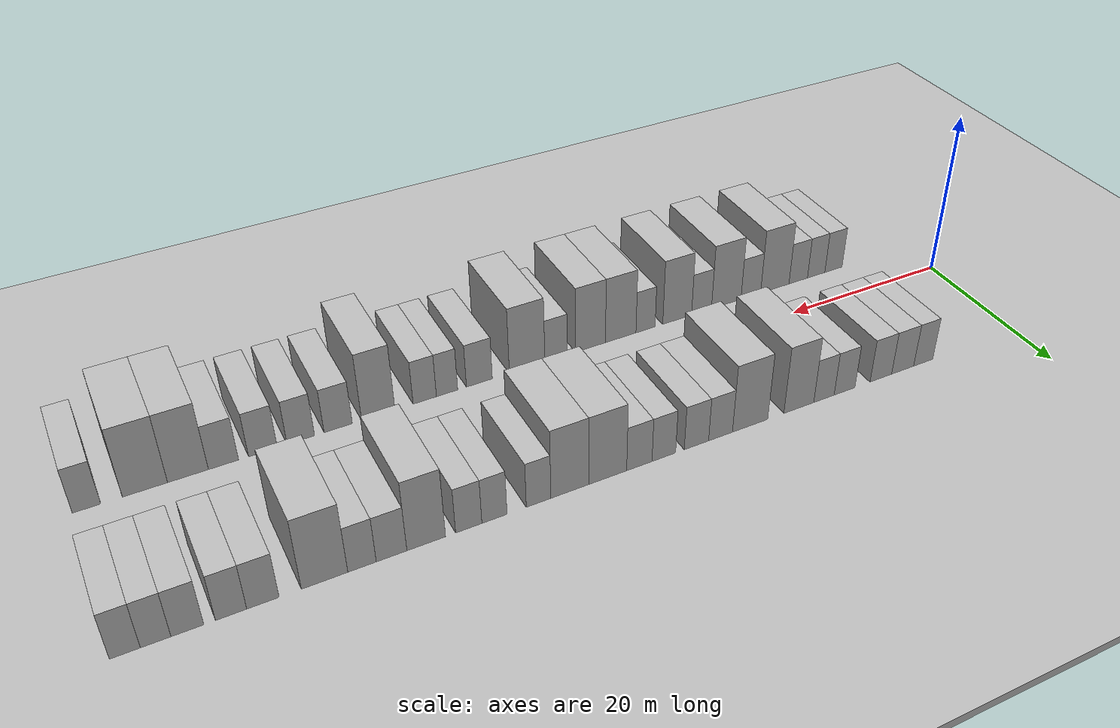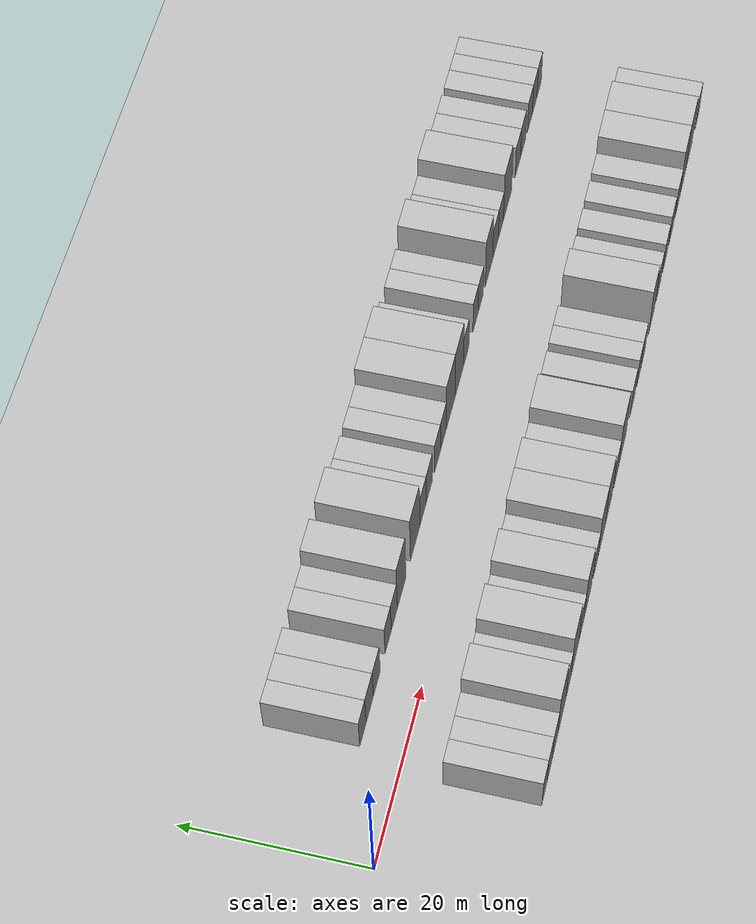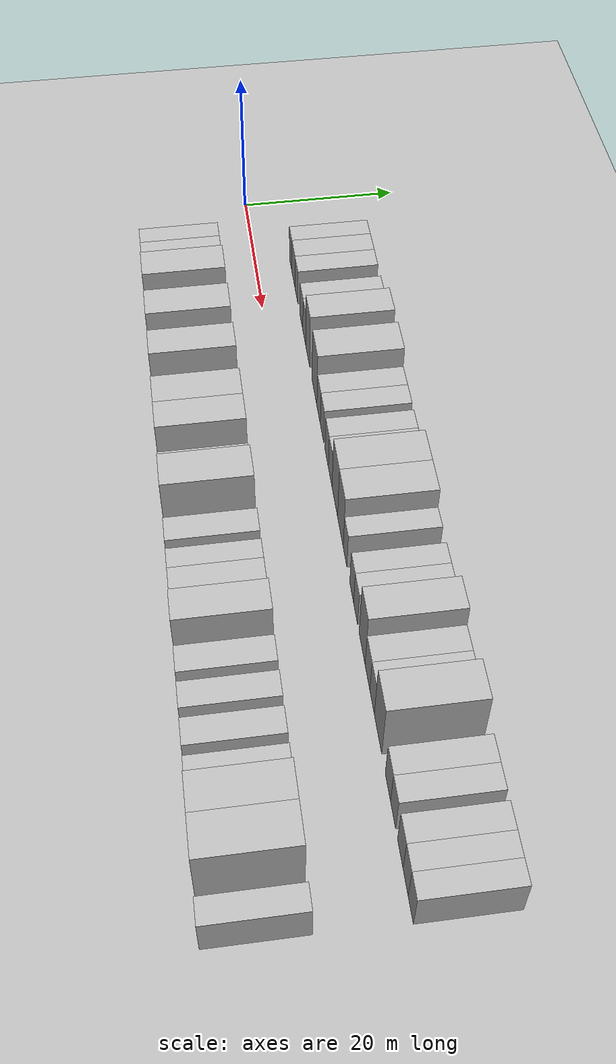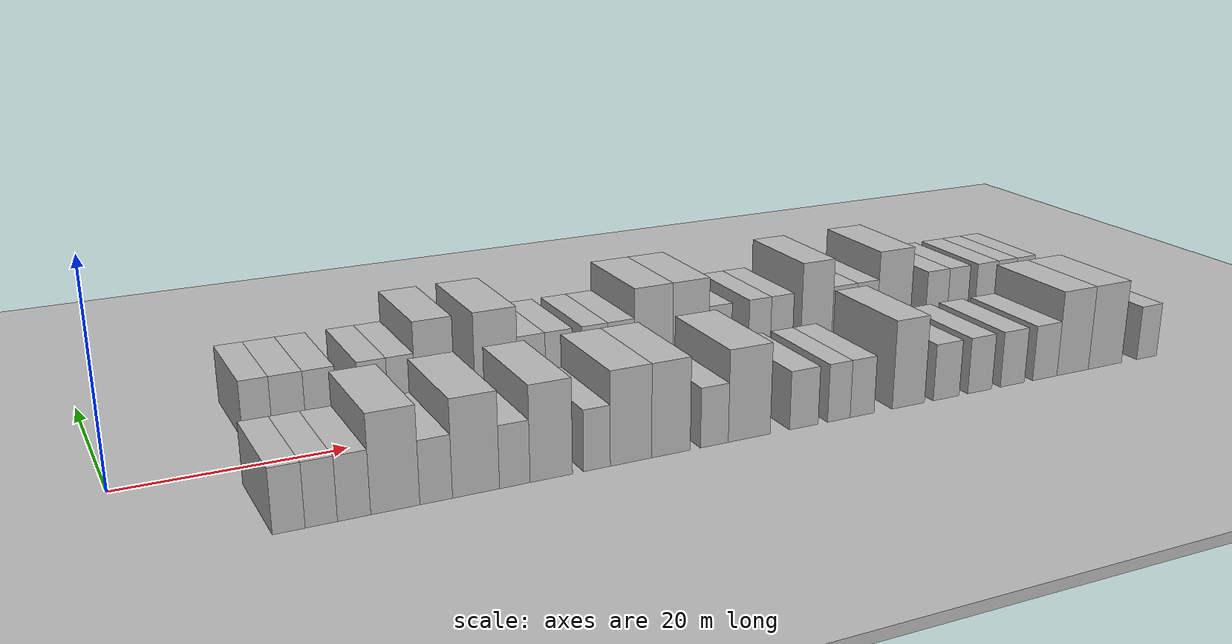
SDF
<sdf version="1.6">
 <world name="default">
  <include><name>ground_plane_1</name><uri>model://HANNAS_ground_plane</uri></include>
  <include>
   <name>ground_plane_2</name>
   <uri>model://HANNAS_ground_plane</uri>
   <pose>100 0 0  0 0 0</pose>
  </include>
  <model name="building_1">
   <static>1</static>
   <pose>13.3037 9.5000 0 0.000000 0.000000 1.570796</pose>
   <link name="link">
    <pose>0 0 3.00 0 0 0</pose>
    <collision name="collision"><geometry><box><size>10.0000 2.6074 6.0000</size></box></geometry></collision>
    <visual name="visual">
     <cast_shadows>0</cast_shadows>
     <geometry><box><size>10.0000 2.6074 6.0000</size></box></geometry>
     <material>
      <script>
       <uri>model://HANNAS_wall/materials/scripts</uri>
       <uri>model://HANNAS_wall/materials/textures</uri>
       <name>vrc/HANNAS_wall</name>
      </script>
     </material>
    </visual>
   </link>
  </model>
  <model name="building_2">
   <static>1</static>
   <pose>16.0971 9.5000 0 0.000000 0.000000 1.570796</pose>
   <link name="link">
    <pose>0 0 3.00 0 0 0</pose>
    <collision name="collision"><geometry><box><size>10.0000 2.9794 6.0000</size></box></geometry></collision>
    <visual name="visual">
     <cast_shadows>0</cast_shadows>
     <geometry><box><size>10.0000 2.9794 6.0000</size></box></geometry>
     <material>
      <script>
       <uri>model://HANNAS_wall/materials/scripts</uri>
       <uri>model://HANNAS_wall/materials/textures</uri>
       <name>vrc/HANNAS_wall</name>
      </script>
     </material>
    </visual>
   </link>
  </model>
  <model name="building_3">
   <static>1</static>
   <pose>19.0187 9.5000 0 0.000000 0.000000 1.570796</pose>
   <link name="link">
    <pose>0 0 3.00 0 0 0</pose>
    <collision name="collision"><geometry><box><size>10.0000 2.8639 6.0000</size></box></geometry></collision>
    <visual name="visual">
     <cast_shadows>0</cast_shadows>
     <geometry><box><size>10.0000 2.8639 6.0000</size></box></geometry>
     <material>
      <script>
       <uri>model://HANNAS_wall/materials/scripts</uri>
       <uri>model://HANNAS_wall/materials/textures</uri>
       <name>vrc/HANNAS_wall</name>
      </script>
     </material>
    </visual>
   </link>
  </model>
  <model name="building_4">
   <static>1</static>
   <pose>23.7933 9.5000 0 0.000000 0.000000 1.570796</pose>
   <link name="link">
    <pose>0 0 3.00 0 0 0</pose>
    <collision name="collision"><geometry><box><size>10.0000 2.6853 6.0000</size></box></geometry></collision>
    <visual name="visual">
     <cast_shadows>0</cast_shadows>
     <geometry><box><size>10.0000 2.6853 6.0000</size></box></geometry>
     <material>
      <script>
       <uri>model://HANNAS_wall/materials/scripts</uri>
       <uri>model://HANNAS_wall/materials/textures</uri>
       <name>vrc/HANNAS_wall</name>
      </script>
     </material>
    </visual>
   </link>
  </model>
  <model name="building_5">
   <static>1</static>
   <pose>26.4383 9.5000 0 0.000000 0.000000 1.570796</pose>
   <link name="link">
    <pose>0 0 3.00 0 0 0</pose>
    <collision name="collision"><geometry><box><size>10.0000 2.6049 6.0000</size></box></geometry></collision>
    <visual name="visual">
     <cast_shadows>0</cast_shadows>
     <geometry><box><size>10.0000 2.6049 6.0000</size></box></geometry>
     <material>
      <script>
       <uri>model://HANNAS_wall/materials/scripts</uri>
       <uri>model://HANNAS_wall/materials/textures</uri>
       <name>vrc/HANNAS_wall</name>
      </script>
     </material>
    </visual>
   </link>
  </model>
  <model name="building_6">
   <static>1</static>
   <pose>29.6137 9.5000 0 0.000000 0.000000 1.570796</pose>
   <link name="link">
    <pose>0 0 4.50 0 0 0</pose>
    <collision name="collision"><geometry><box><size>10.0000 3.7458 9.0000</size></box></geometry></collision>
    <visual name="visual">
     <cast_shadows>0</cast_shadows>
     <geometry><box><size>10.0000 3.7458 9.0000</size></box></geometry>
     <material>
      <script>
       <uri>model://HANNAS_wall/materials/scripts</uri>
       <uri>model://HANNAS_wall/materials/textures</uri>
       <name>vrc/HANNAS_wall</name>
      </script>
     </material>
    </visual>
   </link>
  </model>
  <model name="building_7">
   <static>1</static>
   <pose>35.6239 9.5000 0 0.000000 0.000000 1.570796</pose>
   <link name="link">
    <pose>0 0 4.50 0 0 0</pose>
    <collision name="collision"><geometry><box><size>10.0000 4.2746 9.0000</size></box></geometry></collision>
    <visual name="visual">
     <cast_shadows>0</cast_shadows>
     <geometry><box><size>10.0000 4.2746 9.0000</size></box></geometry>
     <material>
      <script>
       <uri>model://HANNAS_wall/materials/scripts</uri>
       <uri>model://HANNAS_wall/materials/textures</uri>
       <name>vrc/HANNAS_wall</name>
      </script>
     </material>
    </visual>
   </link>
  </model>
  <model name="building_8">
   <static>1</static>
   <pose>39.1787 9.5000 0 0.000000 0.000000 1.570796</pose>
   <link name="link">
    <pose>0 0 3.00 0 0 0</pose>
    <collision name="collision"><geometry><box><size>10.0000 2.8350 6.0000</size></box></geometry></collision>
    <visual name="visual">
     <cast_shadows>0</cast_shadows>
     <geometry><box><size>10.0000 2.8350 6.0000</size></box></geometry>
     <material>
      <script>
       <uri>model://HANNAS_wall/materials/scripts</uri>
       <uri>model://HANNAS_wall/materials/textures</uri>
       <name>vrc/HANNAS_wall</name>
      </script>
     </material>
    </visual>
   </link>
  </model>
  <model name="building_9">
   <static>1</static>
   <pose>42.0162 9.5000 0 0.000000 0.000000 1.570796</pose>
   <link name="link">
    <pose>0 0 3.00 0 0 0</pose>
    <collision name="collision"><geometry><box><size>10.0000 2.8400 6.0000</size></box></geometry></collision>
    <visual name="visual">
     <cast_shadows>0</cast_shadows>
     <geometry><box><size>10.0000 2.8400 6.0000</size></box></geometry>
     <material>
      <script>
       <uri>model://HANNAS_wall/materials/scripts</uri>
       <uri>model://HANNAS_wall/materials/textures</uri>
       <name>vrc/HANNAS_wall</name>
      </script>
     </material>
    </visual>
   </link>
  </model>
  <model name="building_10">
   <static>1</static>
   <pose>45.7865 9.5000 0 0.000000 0.000000 1.570796</pose>
   <link name="link">
    <pose>0 0 3.00 0 0 0</pose>
    <collision name="collision"><geometry><box><size>10.0000 2.7007 6.0000</size></box></geometry></collision>
    <visual name="visual">
     <cast_shadows>0</cast_shadows>
     <geometry><box><size>10.0000 2.7007 6.0000</size></box></geometry>
     <material>
      <script>
       <uri>model://HANNAS_wall/materials/scripts</uri>
       <uri>model://HANNAS_wall/materials/textures</uri>
       <name>vrc/HANNAS_wall</name>
      </script>
     </material>
    </visual>
   </link>
  </model>
  <model name="building_11">
   <static>1</static>
   <pose>48.5643 9.5000 0 0.000000 0.000000 1.570796</pose>
   <link name="link">
    <pose>0 0 3.00 0 0 0</pose>
    <collision name="collision"><geometry><box><size>10.0000 2.8550 6.0000</size></box></geometry></collision>
    <visual name="visual">
     <cast_shadows>0</cast_shadows>
     <geometry><box><size>10.0000 2.8550 6.0000</size></box></geometry>
     <material>
      <script>
       <uri>model://HANNAS_wall/materials/scripts</uri>
       <uri>model://HANNAS_wall/materials/textures</uri>
       <name>vrc/HANNAS_wall</name>
      </script>
     </material>
    </visual>
   </link>
  </model>
  <model name="building_12">
   <static>1</static>
   <pose>52.0824 9.5000 0 0.000000 0.000000 1.570796</pose>
   <link name="link">
    <pose>0 0 4.50 0 0 0</pose>
    <collision name="collision"><geometry><box><size>10.0000 4.1811 9.0000</size></box></geometry></collision>
    <visual name="visual">
     <cast_shadows>0</cast_shadows>
     <geometry><box><size>10.0000 4.1811 9.0000</size></box></geometry>
     <material>
      <script>
       <uri>model://HANNAS_wall/materials/scripts</uri>
       <uri>model://HANNAS_wall/materials/textures</uri>
       <name>vrc/HANNAS_wall</name>
      </script>
     </material>
    </visual>
   </link>
  </model>
  <model name="building_13">
   <static>1</static>
   <pose>56.2039 9.5000 0 0.000000 0.000000 1.570796</pose>
   <link name="link">
    <pose>0 0 4.50 0 0 0</pose>
    <collision name="collision"><geometry><box><size>10.0000 4.0620 9.0000</size></box></geometry></collision>
    <visual name="visual">
     <cast_shadows>0</cast_shadows>
     <geometry><box><size>10.0000 4.0620 9.0000</size></box></geometry>
     <material>
      <script>
       <uri>model://HANNAS_wall/materials/scripts</uri>
       <uri>model://HANNAS_wall/materials/textures</uri>
       <name>vrc/HANNAS_wall</name>
      </script>
     </material>
    </visual>
   </link>
  </model>
  <model name="building_14">
   <static>1</static>
   <pose>59.5326 9.5000 0 0.000000 0.000000 1.570796</pose>
   <link name="link">
    <pose>0 0 3.00 0 0 0</pose>
    <collision name="collision"><geometry><box><size>10.0000 2.5955 6.0000</size></box></geometry></collision>
    <visual name="visual">
     <cast_shadows>0</cast_shadows>
     <geometry><box><size>10.0000 2.5955 6.0000</size></box></geometry>
     <material>
      <script>
       <uri>model://HANNAS_wall/materials/scripts</uri>
       <uri>model://HANNAS_wall/materials/textures</uri>
       <name>vrc/HANNAS_wall</name>
      </script>
     </material>
    </visual>
   </link>
  </model>
  <model name="building_15">
   <static>1</static>
   <pose>64.1183 9.5000 0 0.000000 0.000000 1.570796</pose>
   <link name="link">
    <pose>0 0 3.00 0 0 0</pose>
    <collision name="collision"><geometry><box><size>10.0000 2.5758 6.0000</size></box></geometry></collision>
    <visual name="visual">
     <cast_shadows>0</cast_shadows>
     <geometry><box><size>10.0000 2.5758 6.0000</size></box></geometry>
     <material>
      <script>
       <uri>model://HANNAS_wall/materials/scripts</uri>
       <uri>model://HANNAS_wall/materials/textures</uri>
       <name>vrc/HANNAS_wall</name>
      </script>
     </material>
    </visual>
   </link>
  </model>
  <model name="building_16">
   <static>1</static>
   <pose>66.7314 9.5000 0 0.000000 0.000000 1.570796</pose>
   <link name="link">
    <pose>0 0 3.00 0 0 0</pose>
    <collision name="collision"><geometry><box><size>10.0000 2.6505 6.0000</size></box></geometry></collision>
    <visual name="visual">
     <cast_shadows>0</cast_shadows>
     <geometry><box><size>10.0000 2.6505 6.0000</size></box></geometry>
     <material>
      <script>
       <uri>model://HANNAS_wall/materials/scripts</uri>
       <uri>model://HANNAS_wall/materials/textures</uri>
       <name>vrc/HANNAS_wall</name>
      </script>
     </material>
    </visual>
   </link>
  </model>
  <model name="building_17">
   <static>1</static>
   <pose>70.9541 9.5000 0 0.000000 0.000000 1.570796</pose>
   <link name="link">
    <pose>0 0 4.50 0 0 0</pose>
    <collision name="collision"><geometry><box><size>10.0000 3.7949 9.0000</size></box></geometry></collision>
    <visual name="visual">
     <cast_shadows>0</cast_shadows>
     <geometry><box><size>10.0000 3.7949 9.0000</size></box></geometry>
     <material>
      <script>
       <uri>model://HANNAS_wall/materials/scripts</uri>
       <uri>model://HANNAS_wall/materials/textures</uri>
       <name>vrc/HANNAS_wall</name>
      </script>
     </material>
    </visual>
   </link>
  </model>
  <model name="building_18">
   <static>1</static>
   <pose>74.3240 9.5000 0 0.000000 0.000000 1.570796</pose>
   <link name="link">
    <pose>0 0 3.00 0 0 0</pose>
    <collision name="collision"><geometry><box><size>10.0000 2.9449 6.0000</size></box></geometry></collision>
    <visual name="visual">
     <cast_shadows>0</cast_shadows>
     <geometry><box><size>10.0000 2.9449 6.0000</size></box></geometry>
     <material>
      <script>
       <uri>model://HANNAS_wall/materials/scripts</uri>
       <uri>model://HANNAS_wall/materials/textures</uri>
       <name>vrc/HANNAS_wall</name>
      </script>
     </material>
    </visual>
   </link>
  </model>
  <model name="building_19">
   <static>1</static>
   <pose>77.1398 9.5000 0 0.000000 0.000000 1.570796</pose>
   <link name="link">
    <pose>0 0 3.00 0 0 0</pose>
    <collision name="collision"><geometry><box><size>10.0000 2.6867 6.0000</size></box></geometry></collision>
    <visual name="visual">
     <cast_shadows>0</cast_shadows>
     <geometry><box><size>10.0000 2.6867 6.0000</size></box></geometry>
     <material>
      <script>
       <uri>model://HANNAS_wall/materials/scripts</uri>
       <uri>model://HANNAS_wall/materials/textures</uri>
       <name>vrc/HANNAS_wall</name>
      </script>
     </material>
    </visual>
   </link>
  </model>
  <model name="building_20">
   <static>1</static>
   <pose>80.6303 9.5000 0 0.000000 0.000000 1.570796</pose>
   <link name="link">
    <pose>0 0 4.50 0 0 0</pose>
    <collision name="collision"><geometry><box><size>10.0000 4.2942 9.0000</size></box></geometry></collision>
    <visual name="visual">
     <cast_shadows>0</cast_shadows>
     <geometry><box><size>10.0000 4.2942 9.0000</size></box></geometry>
     <material>
      <script>
       <uri>model://HANNAS_wall/materials/scripts</uri>
       <uri>model://HANNAS_wall/materials/textures</uri>
       <name>vrc/HANNAS_wall</name>
      </script>
     </material>
    </visual>
   </link>
  </model>
  <model name="building_21">
   <static>1</static>
   <pose>86.2190 9.5000 0 0.000000 0.000000 1.570796</pose>
   <link name="link">
    <pose>0 0 3.00 0 0 0</pose>
    <collision name="collision"><geometry><box><size>10.0000 2.8831 6.0000</size></box></geometry></collision>
    <visual name="visual">
     <cast_shadows>0</cast_shadows>
     <geometry><box><size>10.0000 2.8831 6.0000</size></box></geometry>
     <material>
      <script>
       <uri>model://HANNAS_wall/materials/scripts</uri>
       <uri>model://HANNAS_wall/materials/textures</uri>
       <name>vrc/HANNAS_wall</name>
      </script>
     </material>
    </visual>
   </link>
  </model>
  <model name="building_22">
   <static>1</static>
   <pose>89.0271 9.5000 0 0.000000 0.000000 1.570796</pose>
   <link name="link">
    <pose>0 0 3.00 0 0 0</pose>
    <collision name="collision"><geometry><box><size>10.0000 2.7332 6.0000</size></box></geometry></collision>
    <visual name="visual">
     <cast_shadows>0</cast_shadows>
     <geometry><box><size>10.0000 2.7332 6.0000</size></box></geometry>
     <material>
      <script>
       <uri>model://HANNAS_wall/materials/scripts</uri>
       <uri>model://HANNAS_wall/materials/textures</uri>
       <name>vrc/HANNAS_wall</name>
      </script>
     </material>
    </visual>
   </link>
  </model>
  <model name="building_23">
   <static>1</static>
   <pose>92.7909 9.5000 0 0.000000 0.000000 1.570796</pose>
   <link name="link">
    <pose>0 0 3.00 0 0 0</pose>
    <collision name="collision"><geometry><box><size>10.0000 2.7945 6.0000</size></box></geometry></collision>
    <visual name="visual">
     <cast_shadows>0</cast_shadows>
     <geometry><box><size>10.0000 2.7945 6.0000</size></box></geometry>
     <material>
      <script>
       <uri>model://HANNAS_wall/materials/scripts</uri>
       <uri>model://HANNAS_wall/materials/textures</uri>
       <name>vrc/HANNAS_wall</name>
      </script>
     </material>
    </visual>
   </link>
  </model>
  <model name="building_24">
   <static>1</static>
   <pose>95.4669 9.5000 0 0.000000 0.000000 1.570796</pose>
   <link name="link">
    <pose>0 0 3.00 0 0 0</pose>
    <collision name="collision"><geometry><box><size>10.0000 2.5574 6.0000</size></box></geometry></collision>
    <visual name="visual">
     <cast_shadows>0</cast_shadows>
     <geometry><box><size>10.0000 2.5574 6.0000</size></box></geometry>
     <material>
      <script>
       <uri>model://HANNAS_wall/materials/scripts</uri>
       <uri>model://HANNAS_wall/materials/textures</uri>
       <name>vrc/HANNAS_wall</name>
      </script>
     </material>
    </visual>
   </link>
  </model>
  <model name="building_25">
   <static>1</static>
   <pose>98.0242 9.5000 0 0.000000 0.000000 1.570796</pose>
   <link name="link">
    <pose>0 0 3.00 0 0 0</pose>
    <collision name="collision"><geometry><box><size>10.0000 2.5574 6.0000</size></box></geometry></collision>
    <visual name="visual">
     <cast_shadows>0</cast_shadows>
     <geometry><box><size>10.0000 2.5574 6.0000</size></box></geometry>
     <material>
      <script>
       <uri>model://HANNAS_wall/materials/scripts</uri>
       <uri>model://HANNAS_wall/materials/textures</uri>
       <name>vrc/HANNAS_wall</name>
      </script>
     </material>
    </visual>
   </link>
  </model>
  <model name="building_51">
   <static>1</static>
   <pose>11.2599 -9.5000 0 0.000000 0.000000 1.570796</pose>
   <link name="link">
    <pose>0 0 3.00 0 0 0</pose>
    <collision name="collision"><geometry><box><size>10.0000 2.5198 6.0000</size></box></geometry></collision>
    <visual name="visual">
     <cast_shadows>0</cast_shadows>
     <geometry><box><size>10.0000 2.5198 6.0000</size></box></geometry>
     <material>
      <script>
       <uri>model://HANNAS_wall/materials/scripts</uri>
       <uri>model://HANNAS_wall/materials/textures</uri>
       <name>vrc/HANNAS_wall</name>
      </script>
     </material>
    </visual>
   </link>
  </model>
  <model name="building_52">
   <static>1</static>
   <pose>13.7779 -9.5000 0 0.000000 0.000000 1.570796</pose>
   <link name="link">
    <pose>0 0 3.00 0 0 0</pose>
    <collision name="collision"><geometry><box><size>10.0000 2.5163 6.0000</size></box></geometry></collision>
    <visual name="visual">
     <cast_shadows>0</cast_shadows>
     <geometry><box><size>10.0000 2.5163 6.0000</size></box></geometry>
     <material>
      <script>
       <uri>model://HANNAS_wall/materials/scripts</uri>
       <uri>model://HANNAS_wall/materials/textures</uri>
       <name>vrc/HANNAS_wall</name>
      </script>
     </material>
    </visual>
   </link>
  </model>
  <model name="building_53">
   <static>1</static>
   <pose>16.3555 -9.5000 0 0.000000 0.000000 1.570796</pose>
   <link name="link">
    <pose>0 0 3.00 0 0 0</pose>
    <collision name="collision"><geometry><box><size>10.0000 2.6388 6.0000</size></box></geometry></collision>
    <visual name="visual">
     <cast_shadows>0</cast_shadows>
     <geometry><box><size>10.0000 2.6388 6.0000</size></box></geometry>
     <material>
      <script>
       <uri>model://HANNAS_wall/materials/scripts</uri>
       <uri>model://HANNAS_wall/materials/textures</uri>
       <name>vrc/HANNAS_wall</name>
      </script>
     </material>
    </visual>
   </link>
  </model>
  <model name="building_54">
   <static>1</static>
   <pose>19.6704 -9.5000 0 0.000000 0.000000 1.570796</pose>
   <link name="link">
    <pose>0 0 4.50 0 0 0</pose>
    <collision name="collision"><geometry><box><size>10.0000 3.9912 9.0000</size></box></geometry></collision>
    <visual name="visual">
     <cast_shadows>0</cast_shadows>
     <geometry><box><size>10.0000 3.9912 9.0000</size></box></geometry>
     <material>
      <script>
       <uri>model://HANNAS_wall/materials/scripts</uri>
       <uri>model://HANNAS_wall/materials/textures</uri>
       <name>vrc/HANNAS_wall</name>
      </script>
     </material>
    </visual>
   </link>
  </model>
  <model name="building_55">
   <static>1</static>
   <pose>23.0242 -9.5000 0 0.000000 0.000000 1.570796</pose>
   <link name="link">
    <pose>0 0 3.00 0 0 0</pose>
    <collision name="collision"><geometry><box><size>10.0000 2.7163 6.0000</size></box></geometry></collision>
    <visual name="visual">
     <cast_shadows>0</cast_shadows>
     <geometry><box><size>10.0000 2.7163 6.0000</size></box></geometry>
     <material>
      <script>
       <uri>model://HANNAS_wall/materials/scripts</uri>
       <uri>model://HANNAS_wall/materials/textures</uri>
       <name>vrc/HANNAS_wall</name>
      </script>
     </material>
    </visual>
   </link>
  </model>
  <model name="building_56">
   <static>1</static>
   <pose>26.3837 -9.5000 0 0.000000 0.000000 1.570796</pose>
   <link name="link">
    <pose>0 0 4.50 0 0 0</pose>
    <collision name="collision"><geometry><box><size>10.0000 4.0026 9.0000</size></box></geometry></collision>
    <visual name="visual">
     <cast_shadows>0</cast_shadows>
     <geometry><box><size>10.0000 4.0026 9.0000</size></box></geometry>
     <material>
      <script>
       <uri>model://HANNAS_wall/materials/scripts</uri>
       <uri>model://HANNAS_wall/materials/textures</uri>
       <name>vrc/HANNAS_wall</name>
      </script>
     </material>
    </visual>
   </link>
  </model>
  <model name="building_57">
   <static>1</static>
   <pose>29.7186 -9.5000 0 0.000000 0.000000 1.570796</pose>
   <link name="link">
    <pose>0 0 3.00 0 0 0</pose>
    <collision name="collision"><geometry><box><size>10.0000 2.6673 6.0000</size></box></geometry></collision>
    <visual name="visual">
     <cast_shadows>0</cast_shadows>
     <geometry><box><size>10.0000 2.6673 6.0000</size></box></geometry>
     <material>
      <script>
       <uri>model://HANNAS_wall/materials/scripts</uri>
       <uri>model://HANNAS_wall/materials/textures</uri>
       <name>vrc/HANNAS_wall</name>
      </script>
     </material>
    </visual>
   </link>
  </model>
  <model name="building_58">
   <static>1</static>
   <pose>32.9429 -9.5000 0 0.000000 0.000000 1.570796</pose>
   <link name="link">
    <pose>0 0 4.50 0 0 0</pose>
    <collision name="collision"><geometry><box><size>10.0000 3.7813 9.0000</size></box></geometry></collision>
    <visual name="visual">
     <cast_shadows>0</cast_shadows>
     <geometry><box><size>10.0000 3.7813 9.0000</size></box></geometry>
     <material>
      <script>
       <uri>model://HANNAS_wall/materials/scripts</uri>
       <uri>model://HANNAS_wall/materials/textures</uri>
       <name>vrc/HANNAS_wall</name>
      </script>
     </material>
    </visual>
   </link>
  </model>
  <model name="building_59">
   <static>1</static>
   <pose>37.0633 -9.5000 0 0.000000 0.000000 1.570796</pose>
   <link name="link">
    <pose>0 0 3.00 0 0 0</pose>
    <collision name="collision"><geometry><box><size>10.0000 2.4596 6.0000</size></box></geometry></collision>
    <visual name="visual">
     <cast_shadows>0</cast_shadows>
     <geometry><box><size>10.0000 2.4596 6.0000</size></box></geometry>
     <material>
      <script>
       <uri>model://HANNAS_wall/materials/scripts</uri>
       <uri>model://HANNAS_wall/materials/textures</uri>
       <name>vrc/HANNAS_wall</name>
      </script>
     </material>
    </visual>
   </link>
  </model>
  <model name="building_60">
   <static>1</static>
   <pose>40.2228 -9.5000 0 0.000000 0.000000 1.570796</pose>
   <link name="link">
    <pose>0 0 4.50 0 0 0</pose>
    <collision name="collision"><geometry><box><size>10.0000 3.8594 9.0000</size></box></geometry></collision>
    <visual name="visual">
     <cast_shadows>0</cast_shadows>
     <geometry><box><size>10.0000 3.8594 9.0000</size></box></geometry>
     <material>
      <script>
       <uri>model://HANNAS_wall/materials/scripts</uri>
       <uri>model://HANNAS_wall/materials/textures</uri>
       <name>vrc/HANNAS_wall</name>
      </script>
     </material>
    </visual>
   </link>
  </model>
  <model name="building_61">
   <static>1</static>
   <pose>44.0065 -9.5000 0 0.000000 0.000000 1.570796</pose>
   <link name="link">
    <pose>0 0 4.50 0 0 0</pose>
    <collision name="collision"><geometry><box><size>10.0000 3.7081 9.0000</size></box></geometry></collision>
    <visual name="visual">
     <cast_shadows>0</cast_shadows>
     <geometry><box><size>10.0000 3.7081 9.0000</size></box></geometry>
     <material>
      <script>
       <uri>model://HANNAS_wall/materials/scripts</uri>
       <uri>model://HANNAS_wall/materials/textures</uri>
       <name>vrc/HANNAS_wall</name>
      </script>
     </material>
    </visual>
   </link>
  </model>
  <model name="building_62">
   <static>1</static>
   <pose>48.2312 -9.5000 0 0.000000 0.000000 1.570796</pose>
   <link name="link">
    <pose>0 0 3.00 0 0 0</pose>
    <collision name="collision"><geometry><box><size>10.0000 2.7412 6.0000</size></box></geometry></collision>
    <visual name="visual">
     <cast_shadows>0</cast_shadows>
     <geometry><box><size>10.0000 2.7412 6.0000</size></box></geometry>
     <material>
      <script>
       <uri>model://HANNAS_wall/materials/scripts</uri>
       <uri>model://HANNAS_wall/materials/textures</uri>
       <name>vrc/HANNAS_wall</name>
      </script>
     </material>
    </visual>
   </link>
  </model>
  <model name="building_63">
   <static>1</static>
   <pose>51.7178 -9.5000 0 0.000000 0.000000 1.570796</pose>
   <link name="link">
    <pose>0 0 4.50 0 0 0</pose>
    <collision name="collision"><geometry><box><size>10.0000 4.2321 9.0000</size></box></geometry></collision>
    <visual name="visual">
     <cast_shadows>0</cast_shadows>
     <geometry><box><size>10.0000 4.2321 9.0000</size></box></geometry>
     <material>
      <script>
       <uri>model://HANNAS_wall/materials/scripts</uri>
       <uri>model://HANNAS_wall/materials/textures</uri>
       <name>vrc/HANNAS_wall</name>
      </script>
     </material>
    </visual>
   </link>
  </model>
  <model name="building_64">
   <static>1</static>
   <pose>57.3275 -9.5000 0 0.000000 0.000000 1.570796</pose>
   <link name="link">
    <pose>0 0 3.00 0 0 0</pose>
    <collision name="collision"><geometry><box><size>10.0000 2.9872 6.0000</size></box></geometry></collision>
    <visual name="visual">
     <cast_shadows>0</cast_shadows>
     <geometry><box><size>10.0000 2.9872 6.0000</size></box></geometry>
     <material>
      <script>
       <uri>model://HANNAS_wall/materials/scripts</uri>
       <uri>model://HANNAS_wall/materials/textures</uri>
       <name>vrc/HANNAS_wall</name>
      </script>
     </material>
    </visual>
   </link>
  </model>
  <model name="building_65">
   <static>1</static>
   <pose>61.0241 -9.5000 0 0.000000 0.000000 1.570796</pose>
   <link name="link">
    <pose>0 0 3.00 0 0 0</pose>
    <collision name="collision"><geometry><box><size>10.0000 2.4060 6.0000</size></box></geometry></collision>
    <visual name="visual">
     <cast_shadows>0</cast_shadows>
     <geometry><box><size>10.0000 2.4060 6.0000</size></box></geometry>
     <material>
      <script>
       <uri>model://HANNAS_wall/materials/scripts</uri>
       <uri>model://HANNAS_wall/materials/textures</uri>
       <name>vrc/HANNAS_wall</name>
      </script>
     </material>
    </visual>
   </link>
  </model>
  <model name="building_66">
   <static>1</static>
   <pose>63.5317 -9.5000 0 0.000000 0.000000 1.570796</pose>
   <link name="link">
    <pose>0 0 3.00 0 0 0</pose>
    <collision name="collision"><geometry><box><size>10.0000 2.6093 6.0000</size></box></geometry></collision>
    <visual name="visual">
     <cast_shadows>0</cast_shadows>
     <geometry><box><size>10.0000 2.6093 6.0000</size></box></geometry>
     <material>
      <script>
       <uri>model://HANNAS_wall/materials/scripts</uri>
       <uri>model://HANNAS_wall/materials/textures</uri>
       <name>vrc/HANNAS_wall</name>
      </script>
     </material>
    </visual>
   </link>
  </model>
  <model name="building_67">
   <static>1</static>
   <pose>68.6483 -9.5000 0 0.000000 0.000000 1.570796</pose>
   <link name="link">
    <pose>0 0 4.50 0 0 0</pose>
    <collision name="collision"><geometry><box><size>10.0000 3.6239 9.0000</size></box></geometry></collision>
    <visual name="visual">
     <cast_shadows>0</cast_shadows>
     <geometry><box><size>10.0000 3.6239 9.0000</size></box></geometry>
     <material>
      <script>
       <uri>model://HANNAS_wall/materials/scripts</uri>
       <uri>model://HANNAS_wall/materials/textures</uri>
       <name>vrc/HANNAS_wall</name>
      </script>
     </material>
    </visual>
   </link>
  </model>
  <model name="building_68">
   <static>1</static>
   <pose>72.9529 -9.5000 0 0.000000 0.000000 1.570796</pose>
   <link name="link">
    <pose>0 0 3.00 0 0 0</pose>
    <collision name="collision"><geometry><box><size>10.0000 2.9853 6.0000</size></box></geometry></collision>
    <visual name="visual">
     <cast_shadows>0</cast_shadows>
     <geometry><box><size>10.0000 2.9853 6.0000</size></box></geometry>
     <material>
      <script>
       <uri>model://HANNAS_wall/materials/scripts</uri>
       <uri>model://HANNAS_wall/materials/textures</uri>
       <name>vrc/HANNAS_wall</name>
      </script>
     </material>
    </visual>
   </link>
  </model>
  <model name="building_69">
   <static>1</static>
   <pose>76.8724 -9.5000 0 0.000000 0.000000 1.570796</pose>
   <link name="link">
    <pose>0 0 3.00 0 0 0</pose>
    <collision name="collision"><geometry><box><size>10.0000 2.8539 6.0000</size></box></geometry></collision>
    <visual name="visual">
     <cast_shadows>0</cast_shadows>
     <geometry><box><size>10.0000 2.8539 6.0000</size></box></geometry>
     <material>
      <script>
       <uri>model://HANNAS_wall/materials/scripts</uri>
       <uri>model://HANNAS_wall/materials/textures</uri>
       <name>vrc/HANNAS_wall</name>
      </script>
     </material>
    </visual>
   </link>
  </model>
  <model name="building_70">
   <static>1</static>
   <pose>80.7555 -9.5000 0 0.000000 0.000000 1.570796</pose>
   <link name="link">
    <pose>0 0 3.00 0 0 0</pose>
    <collision name="collision"><geometry><box><size>10.0000 2.9122 6.0000</size></box></geometry></collision>
    <visual name="visual">
     <cast_shadows>0</cast_shadows>
     <geometry><box><size>10.0000 2.9122 6.0000</size></box></geometry>
     <material>
      <script>
       <uri>model://HANNAS_wall/materials/scripts</uri>
       <uri>model://HANNAS_wall/materials/textures</uri>
       <name>vrc/HANNAS_wall</name>
      </script>
     </material>
    </visual>
   </link>
  </model>
  <model name="building_71">
   <static>1</static>
   <pose>84.7096 -9.5000 0 0.000000 0.000000 1.570796</pose>
   <link name="link">
    <pose>0 0 3.00 0 0 0</pose>
    <collision name="collision"><geometry><box><size>10.0000 2.9960 6.0000</size></box></geometry></collision>
    <visual name="visual">
     <cast_shadows>0</cast_shadows>
     <geometry><box><size>10.0000 2.9960 6.0000</size></box></geometry>
     <material>
      <script>
       <uri>model://HANNAS_wall/materials/scripts</uri>
       <uri>model://HANNAS_wall/materials/textures</uri>
       <name>vrc/HANNAS_wall</name>
      </script>
     </material>
    </visual>
   </link>
  </model>
  <model name="building_72">
   <static>1</static>
   <pose>88.1842 -9.5000 0 0.000000 0.000000 1.570796</pose>
   <link name="link">
    <pose>0 0 4.50 0 0 0</pose>
    <collision name="collision"><geometry><box><size>10.0000 3.9532 9.0000</size></box></geometry></collision>
    <visual name="visual">
     <cast_shadows>0</cast_shadows>
     <geometry><box><size>10.0000 3.9532 9.0000</size></box></geometry>
     <material>
      <script>
       <uri>model://HANNAS_wall/materials/scripts</uri>
       <uri>model://HANNAS_wall/materials/textures</uri>
       <name>vrc/HANNAS_wall</name>
      </script>
     </material>
    </visual>
   </link>
  </model>
  <model name="building_73">
   <static>1</static>
   <pose>92.3014 -9.5000 0 0.000000 0.000000 1.570796</pose>
   <link name="link">
    <pose>0 0 4.50 0 0 0</pose>
    <collision name="collision"><geometry><box><size>10.0000 4.2811 9.0000</size></box></geometry></collision>
    <visual name="visual">
     <cast_shadows>0</cast_shadows>
     <geometry><box><size>10.0000 4.2811 9.0000</size></box></geometry>
     <material>
      <script>
       <uri>model://HANNAS_wall/materials/scripts</uri>
       <uri>model://HANNAS_wall/materials/textures</uri>
       <name>vrc/HANNAS_wall</name>
      </script>
     </material>
    </visual>
   </link>
  </model>
  <model name="building_74">
   <static>1</static>
   <pose>97.7506 -9.5000 0 0.000000 0.000000 1.570796</pose>
   <link name="link">
    <pose>0 0 3.00 0 0 0</pose>
    <collision name="collision"><geometry><box><size>10.0000 2.6172 6.0000</size></box></geometry></collision>
    <visual name="visual">
     <cast_shadows>0</cast_shadows>
     <geometry><box><size>10.0000 2.6172 6.0000</size></box></geometry>
     <material>
      <script>
       <uri>model://HANNAS_wall/materials/scripts</uri>
       <uri>model://HANNAS_wall/materials/textures</uri>
       <name>vrc/HANNAS_wall</name>
      </script>
     </material>
    </visual>
   </link>
  </model>
 </world>
</sdf>
